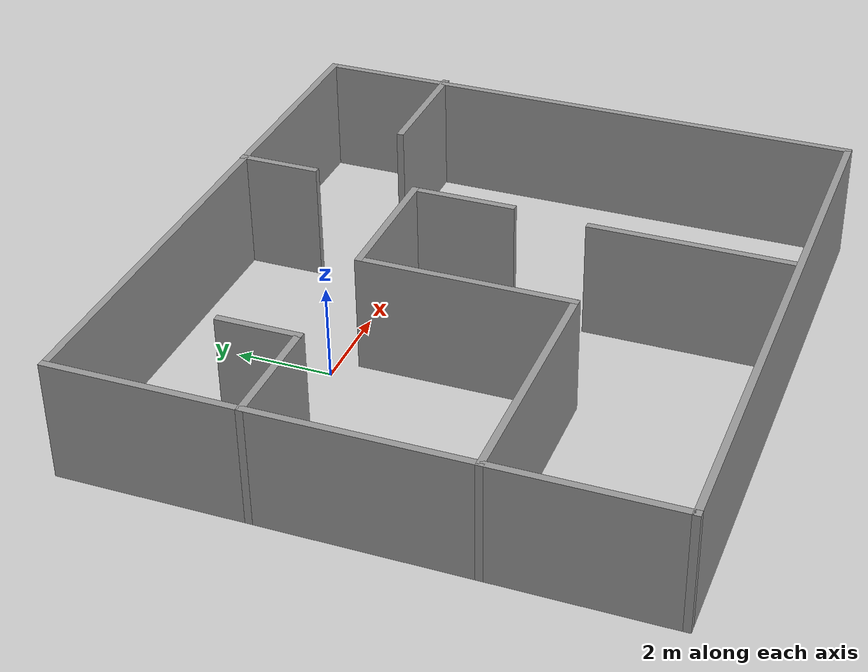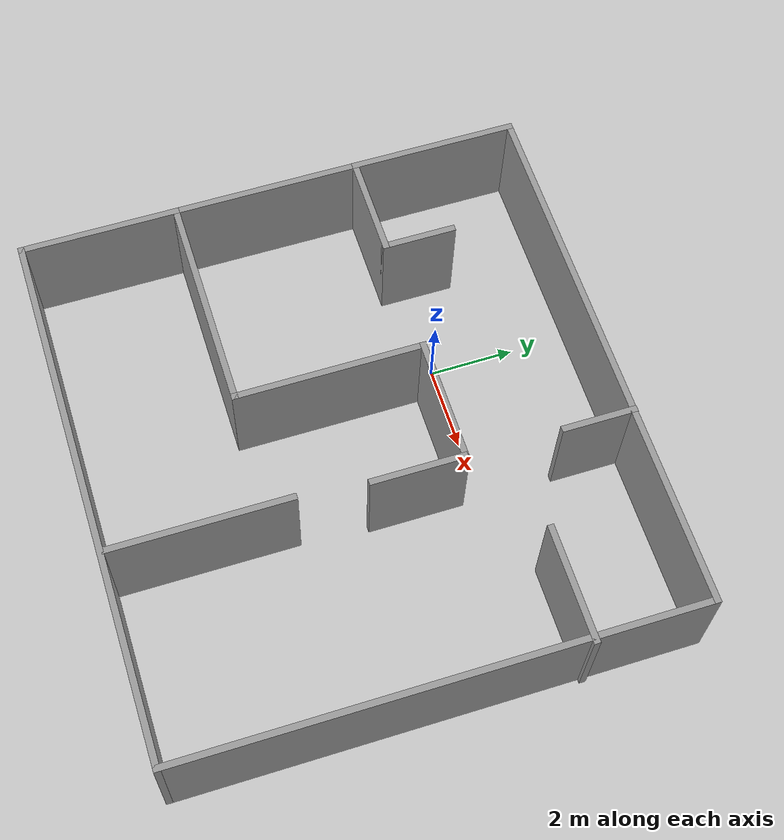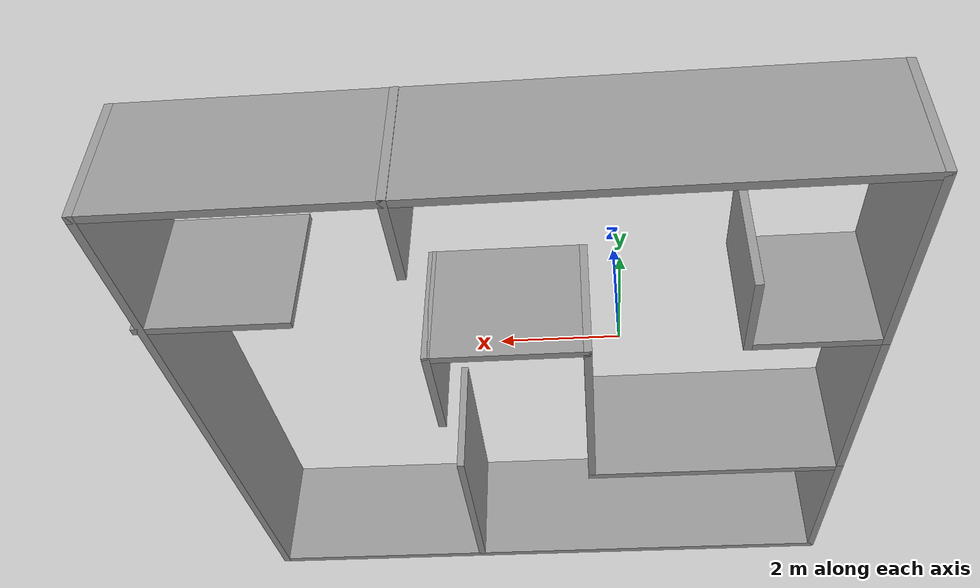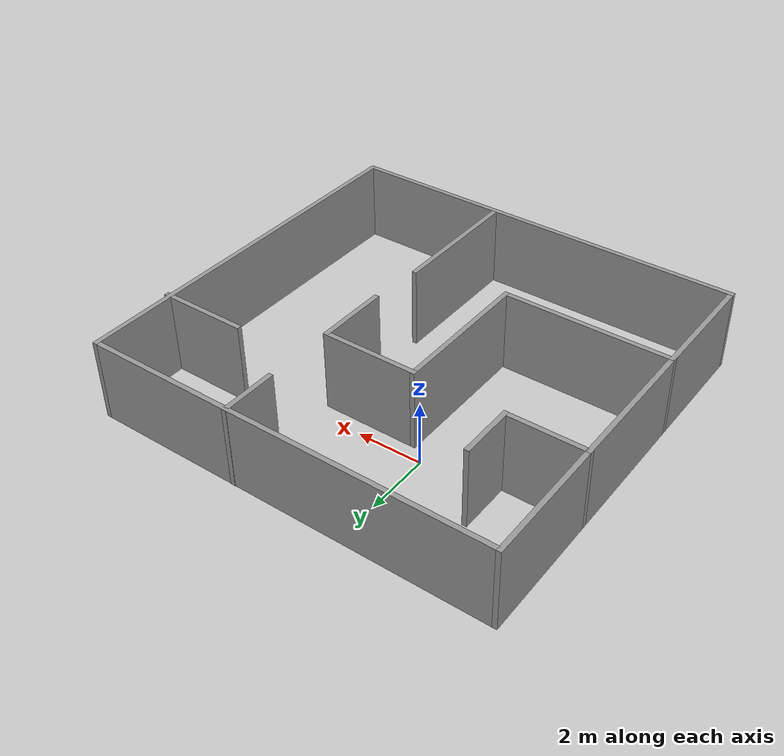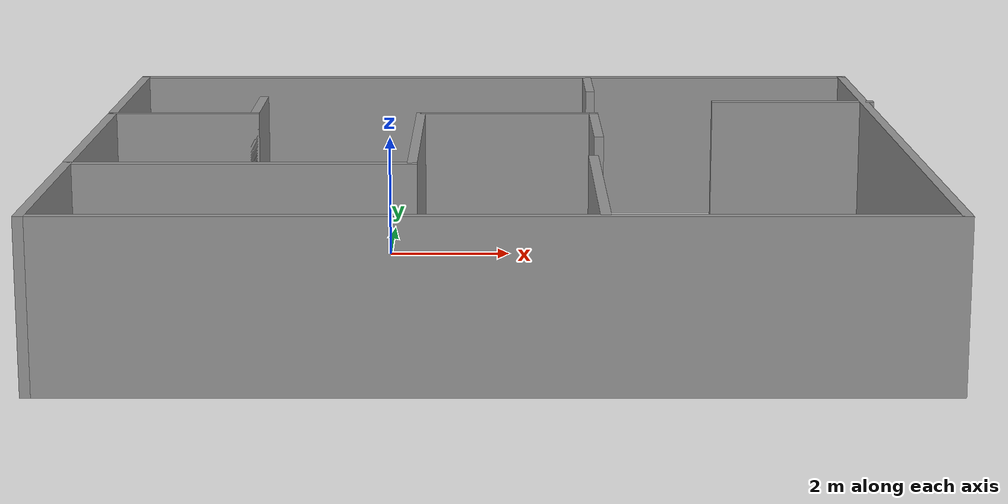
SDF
<?xml version='1.0'?>
<sdf version='1.7'>
  <model name='house_like.world'>
    <pose>1.78336 -2.54963 0 0 -0 0</pose>
    <link name='Wall_0'>
      <collision name='Wall_0_Collision'>
        <geometry>
          <box>
            <size>4.5 0.15 2.5</size>
          </box>
        </geometry>
        <pose>0 0 1.25 0 -0 0</pose>
      </collision>
      <visual name='Wall_0_Visual'>
        <pose>0 0 1.25 0 -0 0</pose>
        <geometry>
          <box>
            <size>4.5 0.15 2.5</size>
          </box>
        </geometry>
        <material>
          <script>
            <uri>file://media/materials/scripts/gazebo.material</uri>
            <name>Gazebo/Grey</name>
          </script>
          <ambient>1 1 1 1</ambient>
        </material>
        <meta>
          <layer>0</layer>
        </meta>
      </visual>
      <pose>-6.34335 -0.105366 0 0 -0 1.5708</pose>
    </link>
    <link name='Wall_1'>
      <collision name='Wall_1_Collision'>
        <geometry>
          <box>
            <size>4 0.15 2.5</size>
          </box>
        </geometry>
        <pose>0 0 1.25 0 -0 0</pose>
      </collision>
      <visual name='Wall_1_Visual'>
        <pose>0 0 1.25 0 -0 0</pose>
        <geometry>
          <box>
            <size>4 0.15 2.5</size>
          </box>
        </geometry>
        <material>
          <script>
            <uri>file://media/materials/scripts/gazebo.material</uri>
            <name>Gazebo/Grey</name>
          </script>
          <ambient>1 1 1 1</ambient>
        </material>
        <meta>
          <layer>0</layer>
        </meta>
      </visual>
      <pose>-6.34335 3.99464 0 0 -0 1.5708</pose>
    </link>
    <link name='Wall_11'>
      <collision name='Wall_11_Collision'>
        <geometry>
          <box>
            <size>2.25 0.15 2.5</size>
          </box>
        </geometry>
        <pose>0 0 1.25 0 -0 0</pose>
      </collision>
      <visual name='Wall_11_Visual'>
        <pose>0 0 1.25 0 -0 0</pose>
        <geometry>
          <box>
            <size>2.25 0.15 2.5</size>
          </box>
        </geometry>
        <material>
          <script>
            <uri>file://media/materials/scripts/gazebo.material</uri>
            <name>Gazebo/Grey</name>
          </script>
          <ambient>1 1 1 1</ambient>
        </material>
        <meta>
          <layer>0</layer>
        </meta>
      </visual>
      <pose>1.60665 1.01963 0 0 -0 -1.5708</pose>
    </link>
    <link name='Wall_14'>
      <collision name='Wall_14_Collision'>
        <geometry>
          <box>
            <size>4.25 0.15 2.5</size>
          </box>
        </geometry>
        <pose>0 0 1.25 0 -0 0</pose>
      </collision>
      <visual name='Wall_14_Visual'>
        <pose>0 0 1.25 0 -0 0</pose>
        <geometry>
          <box>
            <size>4.25 0.15 2.5</size>
          </box>
        </geometry>
        <material>
          <script>
            <uri>file://media/materials/scripts/gazebo.material</uri>
            <name>Gazebo/Grey</name>
          </script>
          <ambient>1 1 1 1</ambient>
        </material>
        <meta>
          <layer>0</layer>
        </meta>
      </visual>
      <pose>1.45938 -3.77573 0 0 -0 1.5708</pose>
    </link>
    <link name='Wall_16'>
      <collision name='Wall_16_Collision'>
        <geometry>
          <box>
            <size>2.5 0.15 2.5</size>
          </box>
        </geometry>
        <pose>0 0 1.25 0 -0 0</pose>
      </collision>
      <visual name='Wall_16_Visual'>
        <pose>0 0 1.25 0 -0 0</pose>
        <geometry>
          <box>
            <size>2.5 0.15 2.5</size>
          </box>
        </geometry>
        <material>
          <script>
            <uri>file://media/materials/scripts/gazebo.material</uri>
            <name>Gazebo/Grey</name>
          </script>
          <ambient>1 1 1 1</ambient>
        </material>
        <meta>
          <layer>0</layer>
        </meta>
      </visual>
      <pose>-5.16836 2.06963 0 0 -0 0</pose>
    </link>
    <link name='Wall_17'>
      <collision name='Wall_17_Collision'>
        <geometry>
          <box>
            <size>1.75 0.15 2.5</size>
          </box>
        </geometry>
        <pose>0 0 1.25 0 -0 0</pose>
      </collision>
      <visual name='Wall_17_Visual'>
        <pose>0 0 1.25 0 -0 0</pose>
        <geometry>
          <box>
            <size>1.75 0.15 2.5</size>
          </box>
        </geometry>
        <material>
          <script>
            <uri>file://media/materials/scripts/gazebo.material</uri>
            <name>Gazebo/Grey</name>
          </script>
          <ambient>1 1 1 1</ambient>
        </material>
        <meta>
          <layer>0</layer>
        </meta>
      </visual>
      <pose>-3.99336 2.86963 0 0 -0 1.5708</pose>
    </link>
    <link name='Wall_19'>
      <collision name='Wall_19_Collision'>
        <geometry>
          <box>
            <size>1.75 0.15 2.5</size>
          </box>
        </geometry>
        <pose>0 0 1.25 0 -0 0</pose>
      </collision>
      <visual name='Wall_19_Visual'>
        <pose>0 0 1.25 0 -0 0</pose>
        <geometry>
          <box>
            <size>1.75 0.15 2.5</size>
          </box>
        </geometry>
        <material>
          <script>
            <uri>file://media/materials/scripts/gazebo.material</uri>
            <name>Gazebo/Grey</name>
          </script>
          <ambient>1 1 1 1</ambient>
        </material>
        <meta>
          <layer>0</layer>
        </meta>
      </visual>
      <pose>1.63678 5.13037 0 0 -0 -1.5708</pose>
    </link>
    <link name='Wall_2'>
      <collision name='Wall_2_Collision'>
        <geometry>
          <box>
            <size>12.75 0.15 2.5</size>
          </box>
        </geometry>
        <pose>0 0 1.25 0 -0 0</pose>
      </collision>
      <visual name='Wall_2_Visual'>
        <pose>0 0 1.25 0 -0 0</pose>
        <geometry>
          <box>
            <size>12.75 0.15 2.5</size>
          </box>
        </geometry>
        <material>
          <script>
            <uri>file://media/materials/scripts/gazebo.material</uri>
            <name>Gazebo/Grey</name>
          </script>
          <ambient>1 1 1 1</ambient>
        </material>
        <meta>
          <layer>0</layer>
        </meta>
      </visual>
      <pose>-0.043355 5.91963 0 0 -0 0</pose>
    </link>
    <link name='Wall_21'>
      <collision name='Wall_21_Collision'>
        <geometry>
          <box>
            <size>2.75 0.15 2.5</size>
          </box>
        </geometry>
        <pose>0 0 1.25 0 -0 0</pose>
      </collision>
      <visual name='Wall_21_Visual'>
        <pose>0 0 1.25 0 -0 0</pose>
        <geometry>
          <box>
            <size>2.75 0.15 2.5</size>
          </box>
        </geometry>
        <material>
          <script>
            <uri>file://media/materials/scripts/gazebo.material</uri>
            <name>Gazebo/Grey</name>
          </script>
          <ambient>1 1 1 1</ambient>
        </material>
        <meta>
          <layer>0</layer>
        </meta>
      </visual>
      <pose>5.04336 3.23515 0 0 -0 3.14159</pose>
    </link>
    <link name='Wall_3'>
      <collision name='Wall_3_Collision'>
        <geometry>
          <box>
            <size>12 0.15 2.5</size>
          </box>
        </geometry>
        <pose>0 0 1.25 0 -0 0</pose>
      </collision>
      <visual name='Wall_3_Visual'>
        <pose>0 0 1.25 0 -0 0</pose>
        <geometry>
          <box>
            <size>12 0.15 2.5</size>
          </box>
        </geometry>
        <material>
          <script>
            <uri>file://media/materials/scripts/gazebo.material</uri>
            <name>Gazebo/Grey</name>
          </script>
          <ambient>1 1 1 1</ambient>
        </material>
        <meta>
          <layer>0</layer>
        </meta>
      </visual>
      <pose>6.25664 -0.005366 0 0 -0 -1.5708</pose>
    </link>
    <link name='Wall_4'>
      <collision name='Wall_4_Collision'>
        <geometry>
          <box>
            <size>12.75 0.15 2.5</size>
          </box>
        </geometry>
        <pose>0 0 1.25 0 -0 0</pose>
      </collision>
      <visual name='Wall_4_Visual'>
        <pose>0 0 1.25 0 -0 0</pose>
        <geometry>
          <box>
            <size>12.75 0.15 2.5</size>
          </box>
        </geometry>
        <material>
          <script>
            <uri>file://media/materials/scripts/gazebo.material</uri>
            <name>Gazebo/Grey</name>
          </script>
          <ambient>1 1 1 1</ambient>
        </material>
        <meta>
          <layer>0</layer>
        </meta>
      </visual>
      <pose>-0.043355 -5.93037 0 0 -0 3.14159</pose>
    </link>
    <link name='Wall_5'>
      <collision name='Wall_5_Collision'>
        <geometry>
          <box>
            <size>3.8 0.15 2.5</size>
          </box>
        </geometry>
        <pose>0 0 1.25 0 -0 0</pose>
      </collision>
      <visual name='Wall_5_Visual'>
        <pose>0 0 1.25 0 -0 0</pose>
        <geometry>
          <box>
            <size>3.8 0.15 2.5</size>
          </box>
        </geometry>
        <material>
          <script>
            <uri>file://media/materials/scripts/gazebo.material</uri>
            <name>Gazebo/Grey</name>
          </script>
          <ambient>1 1 1 1</ambient>
        </material>
        <meta>
          <layer>0</layer>
        </meta>
      </visual>
      <pose>-6.34335 -4.10537 0 0 -0 1.5708</pose>
    </link>
    <link name='Wall_6'>
      <collision name='Wall_6_Collision'>
        <geometry>
          <box>
            <size>5.25 0.15 2.5</size>
          </box>
        </geometry>
        <pose>0 0 1.25 0 -0 0</pose>
      </collision>
      <visual name='Wall_6_Visual'>
        <pose>0 0 1.25 0 -0 0</pose>
        <geometry>
          <box>
            <size>5.25 0.15 2.5</size>
          </box>
        </geometry>
        <material>
          <script>
            <uri>file://media/materials/scripts/gazebo.material</uri>
            <name>Gazebo/Grey</name>
          </script>
          <ambient>1 1 1 1</ambient>
        </material>
        <meta>
          <layer>0</layer>
        </meta>
      </visual>
      <pose>-3.79336 -2.28037 0 0 -0 0</pose>
    </link>
    <link name='Wall_8'>
      <collision name='Wall_8_Collision'>
        <geometry>
          <box>
            <size>4.5 0.15 2.5</size>
          </box>
        </geometry>
        <pose>0 0 1.25 0 -0 0</pose>
      </collision>
      <visual name='Wall_8_Visual'>
        <pose>0 0 1.25 0 -0 0</pose>
        <geometry>
          <box>
            <size>4.5 0.15 2.5</size>
          </box>
        </geometry>
        <material>
          <script>
            <uri>file://media/materials/scripts/gazebo.material</uri>
            <name>Gazebo/Grey</name>
          </script>
          <ambient>1 1 1 1</ambient>
        </material>
        <meta>
          <layer>0</layer>
        </meta>
      </visual>
      <pose>-1.24335 -0.105366 0 0 -0 1.5708</pose>
    </link>
    <link name='Wall_9'>
      <collision name='Wall_9_Collision'>
        <geometry>
          <box>
            <size>3 0.15 2.5</size>
          </box>
        </geometry>
        <pose>0 0 1.25 0 -0 0</pose>
      </collision>
      <visual name='Wall_9_Visual'>
        <pose>0 0 1.25 0 -0 0</pose>
        <geometry>
          <box>
            <size>3 0.15 2.5</size>
          </box>
        </geometry>
        <material>
          <script>
            <uri>file://media/materials/scripts/gazebo.material</uri>
            <name>Gazebo/Grey</name>
          </script>
          <ambient>1 1 1 1</ambient>
        </material>
        <meta>
          <layer>0</layer>
        </meta>
      </visual>
      <pose>0.181645 2.06963 0 0 -0 0</pose>
    </link>
    <static>1</static>
  </model>
</sdf>
